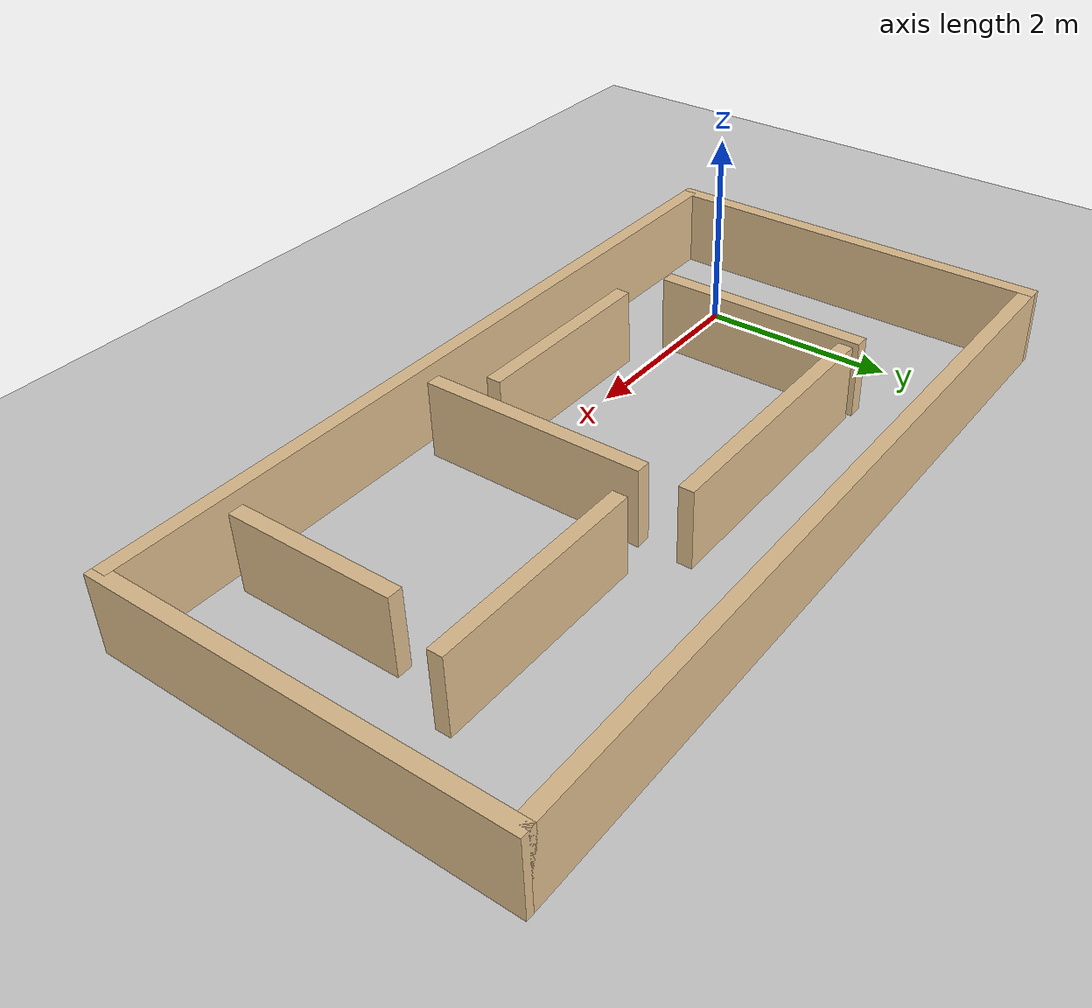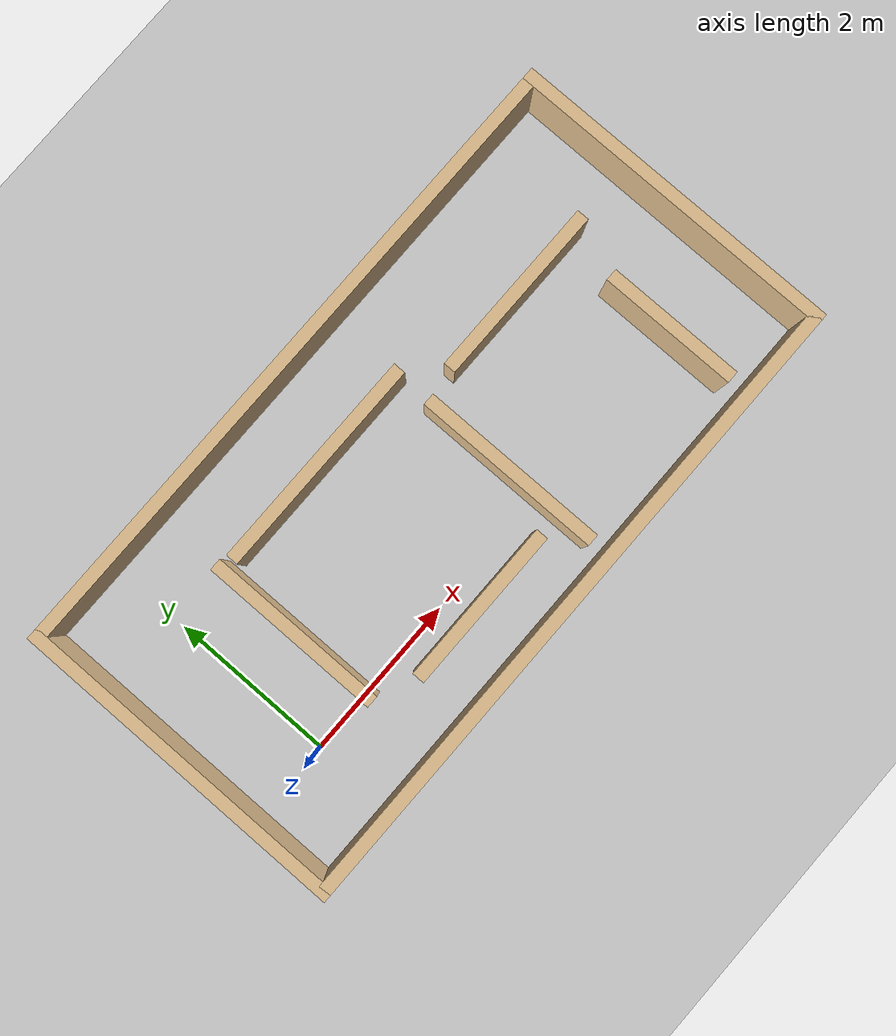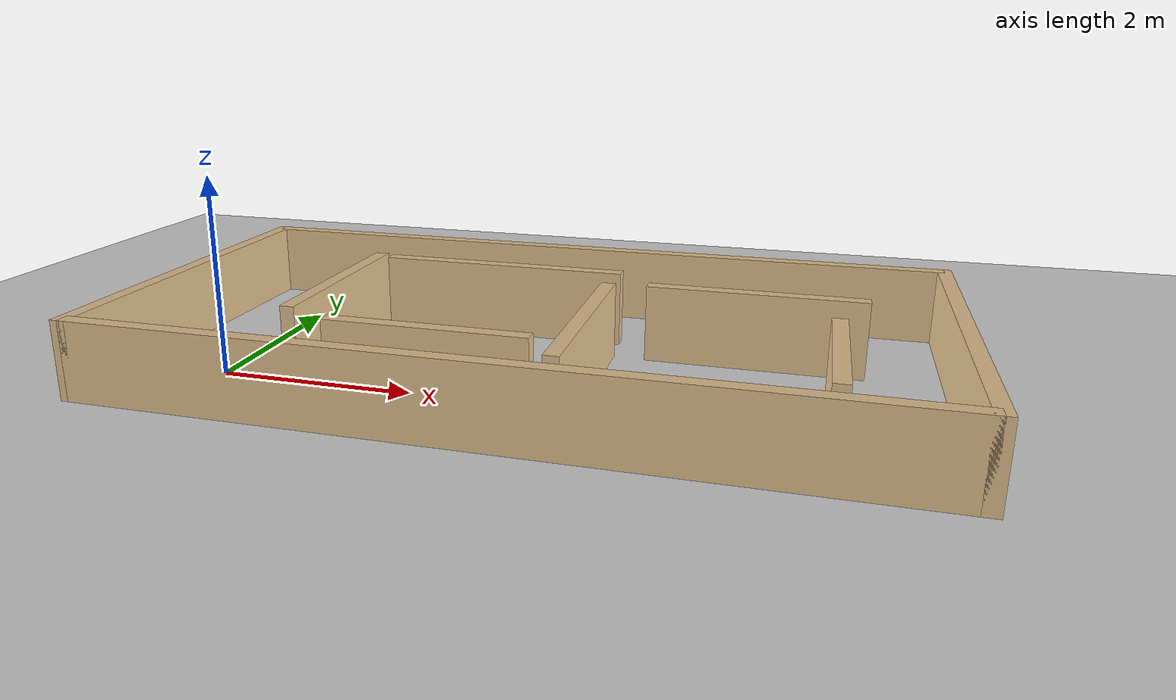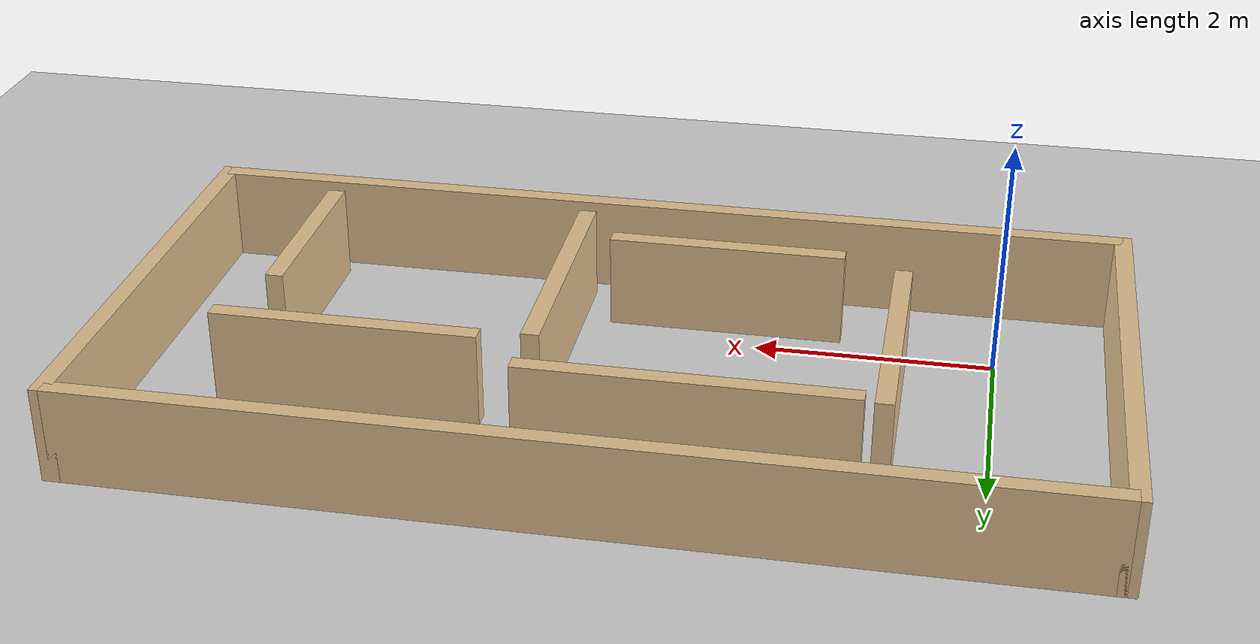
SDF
<?xml version="1.0" ?>
<sdf version="1.6">
  <world name="maze_world">
    <include>
      <uri>model://ground_plane</uri>
    </include>
    <include>
      <uri>model://sun</uri>
    </include>

    <physics name="default_physics" type="ode">
      <max_step_size>0.004</max_step_size>
      <real_time_update_rate>250</real_time_update_rate>
    </physics>

    <scene>
      <ambient>0.7 0.7 0.7 1</ambient>
      <background>0.95 0.95 0.98 1</background>
    </scene>

    <model name="maze_walls">
      <static>true</static>
      <link name="walls">
        <collision name="outer_north">
          <pose>3.0 3.0 0.4 0 0 0</pose>
          <geometry><box><size>8.0 0.15 0.8</size></box></geometry>
        </collision>
        <collision name="outer_south">
          <pose>3.0 -1.0 0.4 0 0 0</pose>
          <geometry><box><size>8.0 0.15 0.8</size></box></geometry>
        </collision>
        <collision name="outer_west">
          <pose>-1.0 1.0 0.4 0 0 0</pose>
          <geometry><box><size>0.15 4.15 0.8</size></box></geometry>
        </collision>
        <collision name="outer_east">
          <pose>7.0 1.0 0.4 0 0 0</pose>
          <geometry><box><size>0.15 4.15 0.8</size></box></geometry>
        </collision>

        <collision name="inner_1">
          <pose>0.8 1.0 0.4 0 0 0</pose>
          <geometry><box><size>0.15 2.2 0.8</size></box></geometry>
        </collision>
        <collision name="inner_2">
          <pose>2.3 2.0 0.4 0 0 0</pose>
          <geometry><box><size>2.7 0.15 0.8</size></box></geometry>
        </collision>
        <collision name="inner_3">
          <pose>3.6 0.4 0.4 0 0 0</pose>
          <geometry><box><size>0.15 2.3 0.8</size></box></geometry>
        </collision>
        <collision name="inner_4">
          <pose>5.1 1.6 0.4 0 0 0</pose>
          <geometry><box><size>2.2 0.15 0.8</size></box></geometry>
        </collision>
        <collision name="inner_5">
          <pose>5.9 0.1 0.4 0 0 0</pose>
          <geometry><box><size>0.15 1.7 0.8</size></box></geometry>
        </collision>
        <collision name="dead_end">
          <pose>2.3 -0.3 0.4 0 0 0</pose>
          <geometry><box><size>2.0 0.15 0.8</size></box></geometry>
        </collision>

        <visual name="outer_north_visual">
          <pose>3.0 3.0 0.4 0 0 0</pose>
          <geometry><box><size>8.0 0.15 0.8</size></box></geometry>
          <material><ambient>0.87 0.74 0.55 1</ambient><diffuse>0.87 0.74 0.55 1</diffuse></material>
        </visual>
        <visual name="outer_south_visual">
          <pose>3.0 -1.0 0.4 0 0 0</pose>
          <geometry><box><size>8.0 0.15 0.8</size></box></geometry>
          <material><ambient>0.87 0.74 0.55 1</ambient><diffuse>0.87 0.74 0.55 1</diffuse></material>
        </visual>
        <visual name="outer_west_visual">
          <pose>-1.0 1.0 0.4 0 0 0</pose>
          <geometry><box><size>0.15 4.15 0.8</size></box></geometry>
          <material><ambient>0.87 0.74 0.55 1</ambient><diffuse>0.87 0.74 0.55 1</diffuse></material>
        </visual>
        <visual name="outer_east_visual">
          <pose>7.0 1.0 0.4 0 0 0</pose>
          <geometry><box><size>0.15 4.15 0.8</size></box></geometry>
          <material><ambient>0.87 0.74 0.55 1</ambient><diffuse>0.87 0.74 0.55 1</diffuse></material>
        </visual>
        <visual name="inner_1_visual">
          <pose>0.8 1.0 0.4 0 0 0</pose>
          <geometry><box><size>0.15 2.2 0.8</size></box></geometry>
          <material><ambient>0.87 0.74 0.55 1</ambient><diffuse>0.87 0.74 0.55 1</diffuse></material>
        </visual>
        <visual name="inner_2_visual">
          <pose>2.3 2.0 0.4 0 0 0</pose>
          <geometry><box><size>2.7 0.15 0.8</size></box></geometry>
          <material><ambient>0.87 0.74 0.55 1</ambient><diffuse>0.87 0.74 0.55 1</diffuse></material>
        </visual>
        <visual name="inner_3_visual">
          <pose>3.6 0.4 0.4 0 0 0</pose>
          <geometry><box><size>0.15 2.3 0.8</size></box></geometry>
          <material><ambient>0.87 0.74 0.55 1</ambient><diffuse>0.87 0.74 0.55 1</diffuse></material>
        </visual>
        <visual name="inner_4_visual">
          <pose>5.1 1.6 0.4 0 0 0</pose>
          <geometry><box><size>2.2 0.15 0.8</size></box></geometry>
          <material><ambient>0.87 0.74 0.55 1</ambient><diffuse>0.87 0.74 0.55 1</diffuse></material>
        </visual>
        <visual name="inner_5_visual">
          <pose>5.9 0.1 0.4 0 0 0</pose>
          <geometry><box><size>0.15 1.7 0.8</size></box></geometry>
          <material><ambient>0.87 0.74 0.55 1</ambient><diffuse>0.87 0.74 0.55 1</diffuse></material>
        </visual>
        <visual name="dead_end_visual">
          <pose>2.3 -0.3 0.4 0 0 0</pose>
          <geometry><box><size>2.0 0.15 0.8</size></box></geometry>
          <material><ambient>0.87 0.74 0.55 1</ambient><diffuse>0.87 0.74 0.55 1</diffuse></material>
        </visual>
      </link>
    </model>
  </world>
</sdf>
